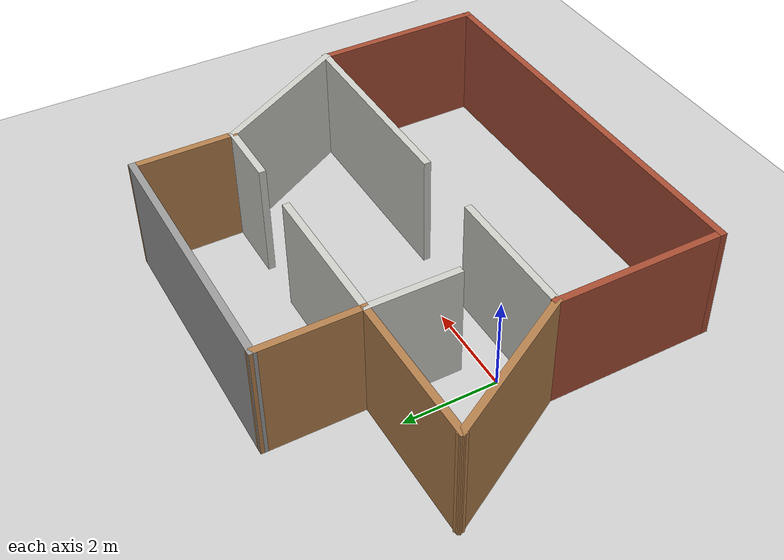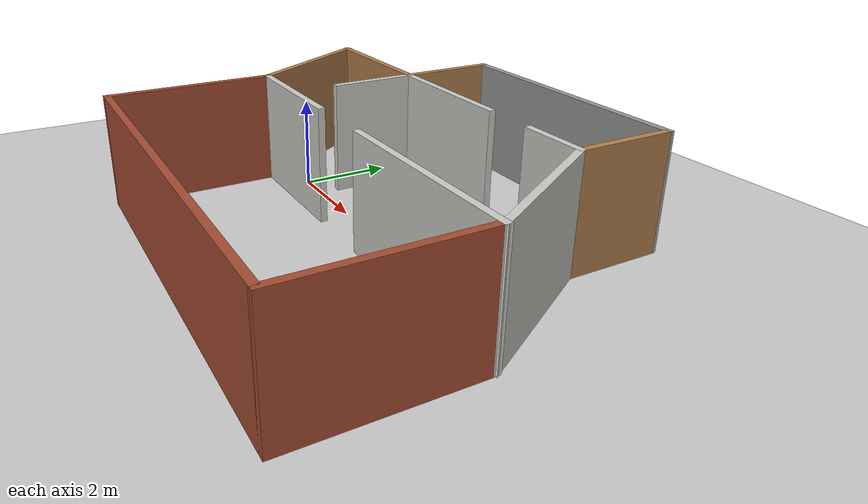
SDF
<sdf version="1.6">
 <world name="default">
  <light name="sun" type="directional">
   <pose>0 0 10 0 -0 0</pose>
   <diffuse>0.8 0.8 0.8 1</diffuse>
   <specular>0.2 0.2 0.2 1</specular>
   <attenuation>
    <range>1000</range>
    <constant>0.9</constant>
    <linear>0.01</linear>
    <quadratic>0.001</quadratic>
   </attenuation>
   <direction>-0.5 0.1 -0.9</direction>
  </light>
  <model name="ground_plane">
   <static>1</static>
   <link name="link">
    <collision name="collision">
     <geometry><plane><normal>0 0 1</normal><size>100 100</size></plane></geometry>
     <surface>
      <contact><collide_bitmask>65535</collide_bitmask></contact>
      <friction><ode><mu>100</mu><mu2>50</mu2></ode></friction>
     </surface>
    </collision>
    <visual name="visual">
     <cast_shadows>0</cast_shadows>
     <geometry><plane><normal>0 0 1</normal><size>100 100</size></plane></geometry>
     <material>
      <script><uri>file://media/materials/scripts/gazebo.material</uri><name>Gazebo/Grey</name></script>
     </material>
    </visual>
   </link>
  </model>
  <gravity>0 0 -9.8</gravity>
  <magnetic_field>6e-06 2.3e-05 -4.2e-05</magnetic_field>
  <atmosphere type="adiabatic"/>
  <physics name="default_physics" default="0" type="ode">
   <max_step_size>0.001</max_step_size>
   <real_time_factor>1</real_time_factor>
   <real_time_update_rate>1000</real_time_update_rate>
  </physics>
  <scene><ambient>0.4 0.4 0.4 1</ambient><background>0.7 0.7 0.7 1</background><shadows>1</shadows></scene>
  <audio><device>default</device></audio>
  <spherical_coordinates>
   <surface_model>EARTH_WGS84</surface_model>
   <latitude_deg>0</latitude_deg>
   <longitude_deg>0</longitude_deg>
   <elevation>0</elevation>
   <heading_deg>0</heading_deg>
  </spherical_coordinates>
  <model name="New_World">
   <pose>2.78631 0.119679 0 0 -0 0</pose>
   <link name="Wall_0">
    <collision name="Wall_0_Collision">
     <geometry><box><size>9 0.15 2.5</size></box></geometry>
     <pose>0 0 1.25 0 -0 0</pose>
    </collision>
    <visual name="Wall_0_Visual">
     <pose>0 0 1.25 0 -0 0</pose>
     <geometry><box><size>9 0.15 2.5</size></box></geometry>
     <material>
      <script><uri>file://media/materials/scripts/gazebo.material</uri><name>Gazebo/Bricks</name></script>
      <ambient>1 1 1 1</ambient>
     </material>
     <meta><layer>0</layer></meta>
    </visual>
    <pose>0.8375 -4.30977 0 0 -0 0</pose>
   </link>
   <link name="Wall_1">
    <collision name="Wall_1_Collision">
     <geometry><box><size>3.75 0.15 2.5</size></box></geometry>
     <pose>0 0 1.25 0 -0 0</pose>
    </collision>
    <visual name="Wall_1_Visual">
     <pose>0 0 1.25 0 -0 0</pose>
     <geometry><box><size>3.75 0.15 2.5</size></box></geometry>
     <material>
      <script><uri>file://media/materials/scripts/gazebo.material</uri><name>Gazebo/Bricks</name></script>
      <ambient>1 1 1 1</ambient>
     </material>
     <meta><layer>0</layer></meta>
    </visual>
    <pose>5.2625 -2.50977 0 0 -0 1.5708</pose>
   </link>
   <link name="Wall_11">
    <collision name="Wall_11_Collision">
     <geometry><box><size>3.5 0.15 2.5</size></box></geometry>
     <pose>0 0 1.25 0 -0 0</pose>
    </collision>
    <visual name="Wall_11_Visual">
     <pose>0 0 1.25 0 -0 0</pose>
     <geometry><box><size>3.5 0.15 2.5</size></box></geometry>
     <material>
      <script><uri>file://media/materials/scripts/gazebo.material</uri><name>Gazebo/CeilingTiled</name></script>
      <ambient>1 1 1 1</ambient>
     </material>
     <meta><layer>0</layer></meta>
    </visual>
    <pose>4.425 0.740821 0 0 -0 2.0944</pose>
   </link>
   <link name="Wall_12">
    <collision name="Wall_12_Collision">
     <geometry><box><size>1.5 0.15 2.5</size></box></geometry>
     <pose>0 0 1.25 0 -0 0</pose>
    </collision>
    <visual name="Wall_12_Visual">
     <pose>0 0 1.25 0 -0 0</pose>
     <geometry><box><size>1.5 0.15 2.5</size></box></geometry>
     <material>
      <script><uri>file://media/materials/scripts/gazebo.material</uri><name>Gazebo/CeilingTiled</name></script>
      <ambient>1 1 1 1</ambient>
     </material>
     <meta><layer>0</layer></meta>
    </visual>
    <pose>2.9125 2.19141 0 0 -0 3.14159</pose>
   </link>
   <link name="Wall_14">
    <collision name="Wall_14_Collision">
     <geometry><box><size>3.25 0.15 2.5</size></box></geometry>
     <pose>0 0 1.25 0 -0 0</pose>
    </collision>
    <visual name="Wall_14_Visual">
     <pose>0 0 1.25 0 -0 0</pose>
     <geometry><box><size>3.25 0.15 2.5</size></box></geometry>
     <material>
      <script><uri>file://media/materials/scripts/gazebo.material</uri><name>Gazebo/CeilingTiled</name></script>
      <ambient>1 1 1 1</ambient>
     </material>
     <meta><layer>0</layer></meta>
    </visual>
    <pose>-0.557546 2.20953 0 0 -0 3.14159</pose>
   </link>
   <link name="Wall_18">
    <collision name="Wall_18_Collision">
     <geometry><box><size>2.25 0.15 2.5</size></box></geometry>
     <pose>0 0 1.25 0 -0 0</pose>
    </collision>
    <visual name="Wall_18_Visual">
     <pose>0 0 1.25 0 -0 0</pose>
     <geometry><box><size>2.25 0.15 2.5</size></box></geometry>
     <material>
      <script><uri>file://media/materials/scripts/gazebo.material</uri><name>Gazebo/Wood</name></script>
      <ambient>1 1 1 1</ambient>
     </material>
     <meta><layer>0</layer></meta>
    </visual>
    <pose>3.5875 3.24141 0 0 -0 1.5708</pose>
   </link>
   <link name="Wall_2">
    <collision name="Wall_2_Collision">
     <geometry><box><size>4.5 0.15 2.5</size></box></geometry>
     <pose>0 0 1.25 0 -0 0</pose>
    </collision>
    <visual name="Wall_2_Visual">
     <pose>0 0 1.25 0 -0 0</pose>
     <geometry><box><size>4.5 0.15 2.5</size></box></geometry>
     <material>
      <script><uri>file://media/materials/scripts/gazebo.material</uri><name>Gazebo/CeilingTiled</name></script>
      <ambient>1 1 1 1</ambient>
     </material>
     <meta><layer>0</layer></meta>
    </visual>
    <pose>3.0875 -0.709772 0 0 -0 3.14159</pose>
   </link>
   <link name="Wall_21">
    <collision name="Wall_21_Collision">
     <geometry><box><size>2.25 0.15 2.5</size></box></geometry>
     <pose>0 0 1.25 0 -0 0</pose>
    </collision>
    <visual name="Wall_21_Visual">
     <pose>0 0 1.25 0 -0 0</pose>
     <geometry><box><size>2.25 0.15 2.5</size></box></geometry>
     <material>
      <script><uri>file://media/materials/scripts/gazebo.material</uri><name>Gazebo/Wood</name></script>
      <ambient>1 1 1 1</ambient>
     </material>
     <meta><layer>0</layer></meta>
    </visual>
    <pose>-2.10755 3.25953 0 0 -0 1.5708</pose>
   </link>
   <link name="Wall_24">
    <collision name="Wall_24_Collision">
     <geometry><box><size>5.84507 0.15 2.5</size></box></geometry>
     <pose>0 0 1.25 0 -0 0</pose>
    </collision>
    <visual name="Wall_24_Visual">
     <pose>0 0 1.25 0 -0 0</pose>
     <geometry><box><size>5.84507 0.15 2.5</size></box></geometry>
     <material>
      <script><uri>file://media/materials/scripts/gazebo.material</uri><name>Gazebo/Grey</name></script>
      <ambient>1 1 1 1</ambient>
     </material>
     <meta><layer>0</layer></meta>
    </visual>
    <pose>0.739977 4.30047 0 0 -0 -0.003182</pose>
   </link>
   <link name="Wall_29">
    <collision name="Wall_29_Collision">
     <geometry><box><size>3.5 0.15 2.5</size></box></geometry>
     <pose>0 0 1.25 0 -0 0</pose>
    </collision>
    <visual name="Wall_29_Visual">
     <pose>0 0 1.25 0 -0 0</pose>
     <geometry><box><size>3.5 0.15 2.5</size></box></geometry>
     <material>
      <script><uri>file://media/materials/scripts/gazebo.material</uri><name>Gazebo/Wood</name></script>
      <ambient>1 1 1 1</ambient>
     </material>
     <meta><layer>0</layer></meta>
    </visual>
    <pose>-4.425 0.740821 0 0 -0 2.0944</pose>
   </link>
   <link name="Wall_30">
    <collision name="Wall_30_Collision">
     <geometry><box><size>3.30501 0.15 2.5</size></box></geometry>
     <pose>0 0 1.25 0 -0 0</pose>
    </collision>
    <visual name="Wall_30_Visual">
     <pose>0 0 1.25 0 -0 0</pose>
     <geometry><box><size>3.30501 0.15 2.5</size></box></geometry>
     <material>
      <script><uri>file://media/materials/scripts/gazebo.material</uri><name>Gazebo/Wood</name></script>
      <ambient>1 1 1 1</ambient>
     </material>
     <meta><layer>0</layer></meta>
    </visual>
    <pose>-3.68502 2.20047 0 0 -0 0.005743</pose>
   </link>
   <link name="Wall_34">
    <collision name="Wall_34_Collision">
     <geometry><box><size>2 0.15 2.5</size></box></geometry>
     <pose>0 0 1.25 0 -0 0</pose>
    </collision>
    <visual name="Wall_34_Visual">
     <pose>0 0 1.25 0 -0 0</pose>
     <geometry><box><size>2 0.15 2.5</size></box></geometry>
     <material>
      <script><uri>file://media/materials/scripts/gazebo.material</uri><name>Gazebo/CeilingTiled</name></script>
      <ambient>1 1 1 1</ambient>
     </material>
     <meta><layer>0</layer></meta>
    </visual>
    <pose>-2.10755 1.28453 0 0 -0 -1.5708</pose>
   </link>
   <link name="Wall_8">
    <collision name="Wall_8_Collision">
     <geometry><box><size>3.75 0.15 2.5</size></box></geometry>
     <pose>0 0 1.25 0 -0 0</pose>
    </collision>
    <visual name="Wall_8_Visual">
     <pose>0 0 1.25 0 -0 0</pose>
     <geometry><box><size>3.75 0.15 2.5</size></box></geometry>
     <material>
      <script><uri>file://media/materials/scripts/gazebo.material</uri><name>Gazebo/Bricks</name></script>
      <ambient>1 1 1 1</ambient>
     </material>
     <meta><layer>0</layer></meta>
    </visual>
    <pose>-3.5875 -2.50977 0 0 -0 1.5708</pose>
   </link>
   <link name="Wall_9">
    <collision name="Wall_9_Collision">
     <geometry><box><size>3 0.15 2.5</size></box></geometry>
     <pose>0 0 1.25 0 -0 0</pose>
    </collision>
    <visual name="Wall_9_Visual">
     <pose>0 0 1.25 0 -0 0</pose>
     <geometry><box><size>3 0.15 2.5</size></box></geometry>
     <material>
      <script><uri>file://media/materials/scripts/gazebo.material</uri><name>Gazebo/CeilingTiled</name></script>
      <ambient>1 1 1 1</ambient>
     </material>
     <meta><layer>0</layer></meta>
    </visual>
    <pose>-2.1625 -0.709772 0 0 -0 0</pose>
   </link>
   <static>1</static>
  </model>
  <model name="my_ball">
   <link name="link_0">
    <inertial>
     <mass>1</mass>
     <inertia><ixx>0.1</ixx><ixy>0</ixy><ixz>0</ixz><iyy>0.1</iyy><iyz>0</iyz><izz>0.1</izz></inertia>
    </inertial>
    <visual name="visual">
     <geometry><sphere><radius>0.1</radius></sphere></geometry>
     <material>
      <lighting>1</lighting>
      <script><uri>file://media/materials/scripts/gazebo.material</uri><name>Gazebo/Grey</name></script>
      <shader type="vertex"><normal_map>__default__</normal_map></shader>
      <ambient>1 1 1 1</ambient>
      <diffuse>1 1 1 1</diffuse>
      <specular>1 1 1 1</specular>
      <emissive>1 1 1 1</emissive>
     </material>
    </visual>
    <collision name="collision">
     <geometry><sphere><radius>0.1</radius></sphere></geometry>
     <surface>
      <friction>
       <ode><mu>1</mu><mu2>1</mu2><fdir1>0 0 0</fdir1><slip1>0</slip1><slip2>0</slip2></ode>
       <torsional>
        <coefficient>1</coefficient>
        <patch_radius>0</patch_radius>
        <surface_radius>0</surface_radius>
        <use_patch_radius>1</use_patch_radius>
        <ode><slip>0</slip></ode>
       </torsional>
      </friction>
      <bounce><restitution_coefficient>0</restitution_coefficient><threshold>1e+06</threshold></bounce>
      <contact>
       <collide_without_contact>0</collide_without_contact>
       <collide_without_contact_bitmask>1</collide_without_contact_bitmask>
       <collide_bitmask>1</collide_bitmask>
       <ode>
        <soft_cfm>0</soft_cfm>
        <soft_erp>0.2</soft_erp>
        <kp>1e+13</kp>
        <kd>1</kd>
        <max_vel>0.01</max_vel>
        <min_depth>0</min_depth>
       </ode>
       <bullet>
        <split_impulse>1</split_impulse>
        <split_impulse_penetration_threshold>-0.01</split_impulse_penetration_threshold>
        <soft_cfm>0</soft_cfm>
        <soft_erp>0.2</soft_erp>
        <kp>1e+13</kp>
        <kd>1</kd>
       </bullet>
      </contact>
     </surface>
    </collision>
   </link>
   <static>0</static>
   <pose>-1.10597 1.58058 0.1 0 -0 0</pose>
  </model>
 </world>
</sdf>
